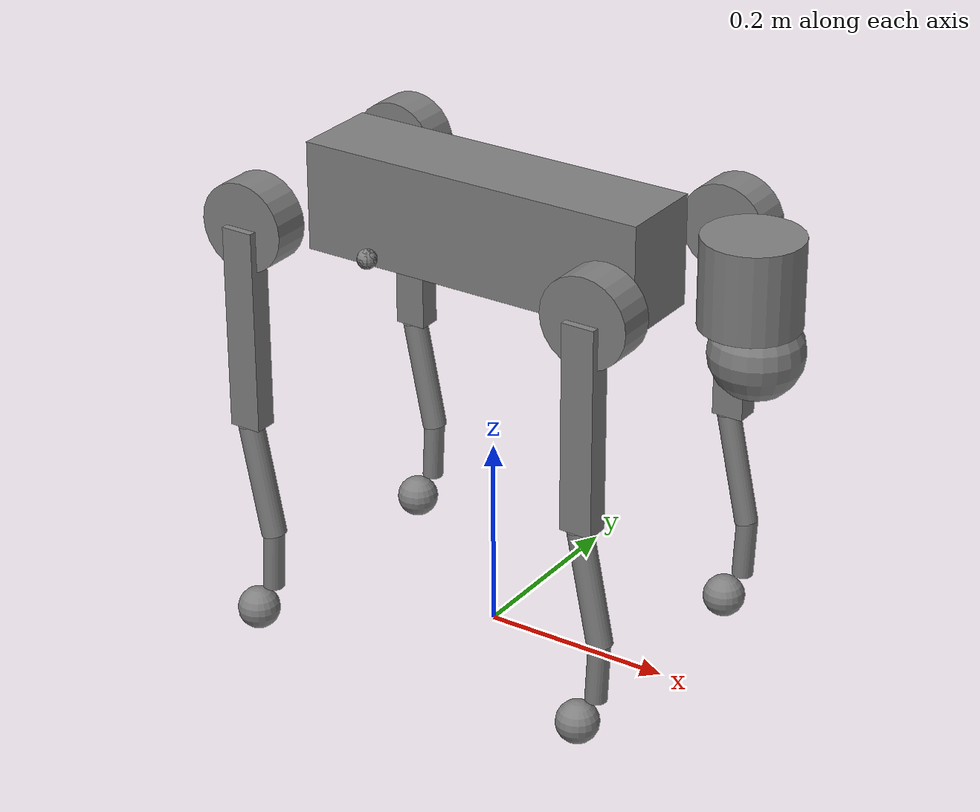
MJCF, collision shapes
<mujoco model="go2">
  <compiler angle="radian" meshdir="meshes" autolimits="true" eulerseq="XYZ"/>

  <option cone="elliptic" impratio="10" integrator="implicitfast" timestep="0.005"/>

<!-- All motor control limits are handeled in the joint actuatorfrcrange field. -->
  <default>
    <default class="go2">
      <geom friction="0.9" margin="0.001" condim="6"/>
      <joint axis="0 1 0" damping="2" armature="0.01" frictionloss="0.2"/>
      <motor ctrllimited="false"/>

      <!-- Hip joints -->
      <default class="hip">
        <joint axis="1 0 0" range="-1.0472 1.0472" actuatorfrcrange="-23.7 23.7"/>

        <!-- Position Control -->
        <default class="hip_pos">
          <position kp="50" ctrllimited="true" ctrlrange="-100 100"/>
        </default>

        <!-- Velocity Control -->
        <default class="hip_vel">
          <velocity kv="8" ctrllimited="false"/>
        </default>
      </default>

      <!-- Thigh joints -->
      <default class="thigh">
        <default class="front_thigh">
          <joint range="-1.5708 3.4907" actuatorfrcrange="-23.7 23.7"/>
        </default>
        <default class="back_thigh">
          <joint range="-0.5236 4.5379" actuatorfrcrange="-23.7 23.7"/>
        </default>

        <!-- Position Control -->
        <default class="thigh_pos">
          <position kp="50" ctrllimited="true" ctrlrange="-100 100"/>
        </default>

        <!-- Velocity Control -->
        <default class="thigh_vel">
          <velocity kv="8" ctrllimited="false"/>
        </default>
      </default>

      <!-- Calf joints -->
      <default class="calf">
        <joint range="-2.7227 -0.83776" actuatorfrcrange="-45.43 45.43"/>

        <!-- Position Control -->
        <default class="calf_pos">
         <position kp="50" ctrllimited="true" ctrlrange="-100 100"/>
        </default>

        <!-- Velocity Control -->
        <default class="calf_vel">
          <velocity kv="8" ctrllimited="false"/>
        </default>
      </default>

      <default class="visual">
        <geom type="mesh" contype="0" conaffinity="0" group="2"/>
      </default>

      <default class="collision">
        <geom group="3"/>
        <default class="foot">
          <geom size="0.022" pos="-0.002 0 -0.213" priority="1" solimp="0.015 1 0.022" condim="6"
            friction="0.8 0.02 0.01"/>
        </default>
      </default>
    </default>
  </default>

  <asset>
    <material name="metal" rgba=".9 .95 .95 1"/>
    <material name="black" rgba="0 0 0 1"/>
    <material name="white" rgba="1 1 1 1"/>
    <material name="gray" rgba="0.671705 0.692426 0.774270 1"/>

    <mesh name="trunk" file="trunk.stl"/>
    <mesh name="calf" file="calf.stl"/>
    <mesh name="foot" file="foot.stl"/>
    <mesh name="hip" file="hip.stl"/>
    <mesh name="thigh" file="thigh.stl"/>
    <mesh name="thigh_mirror" file="thigh_mirror.stl"/>
    <mesh name="calf_mirror" file="calf_mirror.stl"/>

  </asset>

  <worldbody>
    <body name="torso" pos="0 0 0.445" childclass="go2">
      <inertial pos="0.021112 0 -0.005366" quat="-0.000543471 0.713435 -0.00173769 0.700719" mass="6.921"
        diaginertia="0.02448 0.098077 0.107"/>
        <!-- diaginertia changed to match urdf throghout xml -->

      <freejoint name="root"/>

      <geom mesh="trunk" class="visual"/>
      <geom size="0.1881 0.04675 0.057" type="box" class="collision"/>
      <geom size="0.05 0.045" pos="0.285 0 0.01" type="cylinder" class="collision"/>
      <geom size="0.047" pos="0.293 0 -0.06" class="collision"/>

      <site name="imu" pos="-0.02557 0 0.04232"/>
      <site name="torso_mocap_site" pos="0 0 0" euler="0 0 0" size="0.01"/>
      <site name="tracking_camera_site" pos="-0.0635 -0.12 -0.01" euler="0.0 3.14159 1.57079" size="0.01"/>
      <site name="tracking_camera_site_vel" pos="-0.0635 -0.12 -0.01" euler="0.0 0 -1.57079" size="0.01"/>
      <site name="torso" pos="0 0 0" size="0.01"/>
      <site name="head" pos=".3 0 0"/>

      <body name="FL_hip" pos="0.1934 0.0465 0">
        <inertial pos="-0.0054 0.00194 -0.000105" quat="0.497014 0.499245 0.505462 0.498237" mass="0.678"
          diaginertia="0.00048 0.000884 0.000596"/>
        <joint name="FL_hip_joint" class="hip"/>
        <geom mesh="hip" class="visual"/>
        <geom size="0.046 0.02" pos="0 0.08 0" quat="1 1 0 0" type="cylinder" class="collision"/>

        <body name="FL_hip_rotor" pos="0.11215 0.04675 0">
          <inertial pos="0 0 0" euler="0 0 0" mass="0.089"
                diaginertia="0.000111842 0.000059647 0.000059647"/>
        </body>

        <body name="FL_thigh" pos="0 0.0955 0">
          <inertial pos="-0.00374 -0.0223 -0.0327" quat="0.829533 0.0847635 -0.0200632 0.551623" mass="1.152"
            diaginertia="0.00594973 0.00584149 0.000878787"/>
          <joint name="FL_thigh_joint" class="front_thigh"/>
          <geom mesh="thigh" class="visual"/>
          <geom size="0.1065 0.01225 0.017" pos="0 0 -0.1065" quat="0.707107 0 0.707107 0" type="box" class="collision"/>
          <body name="FL_calf" pos="0 0 -0.213">
            <inertial pos="0.00629595 -0.000622121 -0.141417" quat="0.710672 0.00154099 -0.00450087 0.703508"
              mass="0.241352" diaginertia="0.0014901 0.00146356 5.31397e-05"/>
            <joint name="FL_calf_joint" class="calf"/>
            <geom mesh="calf" class="visual"/>
            <geom size="0.012 0.06" pos="0.008 0 -0.06" quat="0.994493 0 -0.104807 0" type="cylinder" class="collision"/>
            <geom size="0.011 0.0325" pos="0.02 0 -0.148" quat="0.999688 0 0.0249974 0" type="cylinder" class="collision"/>
            <geom pos="0 0 -0.213" mesh="foot" class="visual" material="black"/>
            <geom name="FL" class="foot"/>
            <site name="FL_foot_site" pos="0 0 -0.213" size="0.01"/>
          </body>
        </body>
      </body>

      <body name="FR_hip" pos="0.1934 -0.0465 0">
        <inertial pos="-0.0054 -0.00194 -0.000105" quat="0.498237 0.505462 0.499245 0.497014" mass="0.678"
          diaginertia="0.00088403 0.000596003 0.000479967"/>
        <joint name="FR_hip_joint" class="hip"/>
        <geom mesh="hip" class="visual" quat="0 1 0 0"/>
        <geom size="0.046 0.02" pos="0 -0.08 0" quat="0.707107 0.707107 0 0" type="cylinder" class="collision"/>

        <body name="FR_hip_rotor" pos="0.11215 -0.04675 0">
          <inertial pos="0 0 0" euler="0 0 0" mass="0.089"
                diaginertia="0.000111842 0.000059647 0.000059647"/>
        </body>

        <body name="FR_thigh" pos="0 -0.0955 0">
          <inertial pos="-0.00374 0.0223 -0.0327" quat="0.551623 -0.0200632 0.0847635 0.829533" mass="1.152"
            diaginertia="0.00594973 0.00584149 0.000878787"/>
          <joint name="FR_thigh_joint" class="front_thigh"/>
          <geom mesh="thigh_mirror" class="visual"/>
          <geom size="0.1065 0.01225 0.017" pos="0 0 -0.1065" quat="0.707107 0 0.707107 0" type="box" class="collision"/>
          <body name="FR_calf" pos="0 0 -0.213">
            <inertial pos="0.00629595 0.000622121 -0.141417" quat="0.703508 -0.00450087 0.00154099 0.710672"
              mass="0.241352" diaginertia="0.0014901 0.00146356 5.31397e-05"/>
            <joint name="FR_calf_joint" class="calf"/>
            <geom mesh="calf_mirror" class="visual"/>
            <geom size="0.013 0.06" pos="0.01 0 -0.06" quat="0.995004 0 -0.0998334 0" type="cylinder" class="collision"/>
            <geom size="0.011 0.0325" pos="0.02 0 -0.148" quat="0.999688 0 0.0249974 0" type="cylinder" class="collision"/>
            <geom pos="0 0 -0.213" mesh="foot" class="visual" material="black"/>
            <geom name="FR" class="foot"/>
            <site name="FR_foot_site" pos="0 0 -0.213" size="0.01"/>
          </body>
        </body>
      </body>
      <body name="RL_hip" pos="-0.1934 0.0465 0">
        <inertial pos="0.0054 0.00194 -0.000105" quat="0.505462 0.498237 0.497014 0.499245" mass="0.678"
          diaginertia="0.00088403 0.000596003 0.000479967"/>
        <joint name="RL_hip_joint" class="hip"/>
        <geom mesh="hip" class="visual" quat="0 0 1 0"/>
        <geom size="0.046 0.02" pos="0 0.08 0" quat="0.707107 0.707107 0 0" type="cylinder" class="collision"/>

        <body name="RL_hip_rotor" pos="-0.11215 0.04675 0">
          <inertial pos="0 0 0" euler="0 0 0" mass="0.089"
                diaginertia="0.000111842 0.000059647 0.000059647"/>
        </body>

        <body name="RL_thigh" pos="0 0.0955 0">
          <inertial pos="-0.00374 -0.0223 -0.0327" quat="0.829533 0.0847635 -0.0200632 0.551623" mass="1.152"
            diaginertia="0.00594973 0.00584149 0.000878787"/>
          <joint name="RL_thigh_joint" class="back_thigh"/>
          <geom mesh="thigh" class="visual"/>
          <geom size="0.1065 0.01225 0.017" pos="0 0 -0.1065" quat="0.707107 0 0.707107 0" type="box" class="collision"/>
          <body name="RL_calf" pos="0 0 -0.213">
            <inertial pos="0.00629595 -0.000622121 -0.141417" quat="0.710672 0.00154099 -0.00450087 0.703508"
              mass="0.241352" diaginertia="0.0014901 0.00146356 5.31397e-05"/>
            <joint name="RL_calf_joint" class="calf"/>
            <geom mesh="calf" class="visual"/>
            <geom size="0.013 0.06" pos="0.01 0 -0.06" quat="0.995004 0 -0.0998334 0" type="cylinder" class="collision"/>
            <geom size="0.011 0.0325" pos="0.02 0 -0.148" quat="0.999688 0 0.0249974 0" type="cylinder" class="collision"/>
            <geom pos="0 0 -0.213" mesh="foot" class="visual" material="black"/>
            <geom name="RL" class="foot"/>
            <site name="RL_foot_site" pos="0 0 -0.213" size="0.01"/>
          </body>
        </body>
      </body>
      <body name="RR_hip" pos="-0.1934 -0.0465 0">
        <inertial pos="0.0054 -0.00194 -0.000105" quat="0.499245 0.497014 0.498237 0.505462" mass="0.678"
          diaginertia="0.00088403 0.000596003 0.000479967"/>
        <joint name="RR_hip_joint" class="hip"/>
        <geom mesh="hip" class="visual" quat="0 0 0 -1"/>
        <geom size="0.046 0.02" pos="0 -0.08 0" quat="0.707107 0.707107 0 0" type="cylinder" class="collision"/>

        <body name="RR_hip_rotor" pos="-0.11215 -0.04675 0">
          <inertial pos="0 0 0" euler="0 0 0" mass="0.089"
                diaginertia="0.000111842 0.000059647 0.000059647"/>
        </body>

        <body name="RR_thigh" pos="0 -0.0955 0">
          <inertial pos="-0.00374 0.0223 -0.0327" quat="0.551623 -0.0200632 0.0847635 0.829533" mass="1.152"
            diaginertia="0.00594973 0.00584149 0.000878787"/>
          <joint name="RR_thigh_joint" class="back_thigh"/>
          <geom mesh="thigh_mirror" class="visual"/>
          <geom size="0.1065 0.01225 0.017" pos="0 0 -0.1065" quat="0.707107 0 0.707107 0" type="box" class="collision"/>
          <body name="RR_calf" pos="0 0 -0.213">
            <inertial pos="0.00629595 0.000622121 -0.141417" quat="0.703508 -0.00450087 0.00154099 0.710672"
              mass="0.241352" diaginertia="0.0014901 0.00146356 5.31397e-05"/>
            <joint name="RR_calf_joint" class="calf"/>
            <geom mesh="calf_mirror" class="visual"/>
            <geom size="0.013 0.06" pos="0.01 0 -0.06" quat="0.995004 0 -0.0998334 0" type="cylinder" class="collision"/>
            <geom size="0.011 0.0325" pos="0.02 0 -0.148" quat="0.999688 0 0.0249974 0" type="cylinder" class="collision"/>
            <geom pos="0 0 -0.213" mesh="foot" class="visual" material="black"/>
            <geom name="RR" class="foot"/>
            <site name="RR_foot_site" pos="0 0 -0.213" size="0.01"/>
          </body>
        </body>
      </body>
    </body>
  </worldbody>

<!-- Sensors -->
<!--    &lt;!&ndash; Joint position sensors &ndash;&gt;-->

<!--    &lt;!&ndash; Joint velocity sensors &ndash;&gt;-->

<!--    &lt;!&ndash; IMU sensors &ndash;&gt;-->

<!--    &lt;!&ndash; Mocap sensors &ndash;&gt;-->

<!--    &lt;!&ndash; Tracking Camera &ndash;&gt;-->

<!--    &lt;!&ndash;  Force sensors  &ndash;&gt;-->

<!--&lt;!&ndash; Actuators &ndash;&gt;-->
<!--    &lt;!&ndash; Position Control &ndash;&gt;-->

<!--    &lt;!&ndash; Velocity Control &ndash;&gt;-->

<!--    &lt;!&ndash; Torque Control &ndash;&gt;-->

  <keyframe>
    <key name="home" qpos="0 0 0.27 1 0 0 0 0 0.9 -1.8 0 0.9 -1.8 0 0.9 -1.8 0 0.9 -1.8"
         ctrl="0 0.9 -1.8 0 0.9 -1.8 0 0.9 -1.8 0 0.9 -1.8"/>
  </keyframe>
</mujoco>
